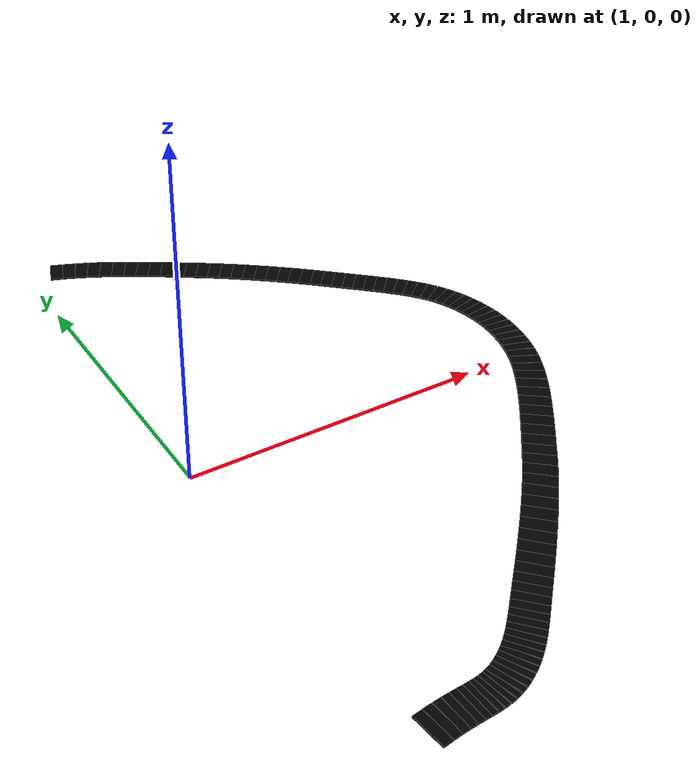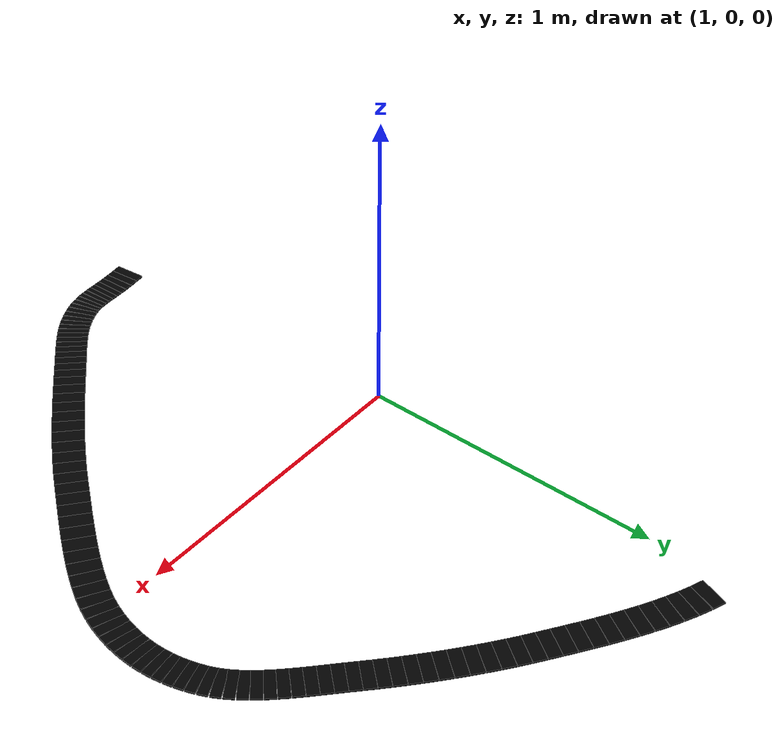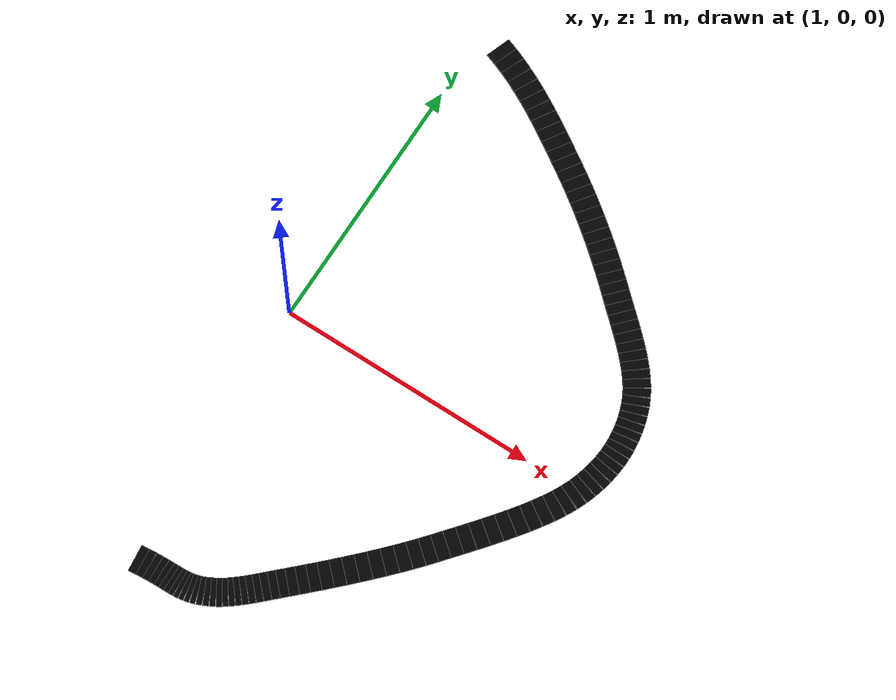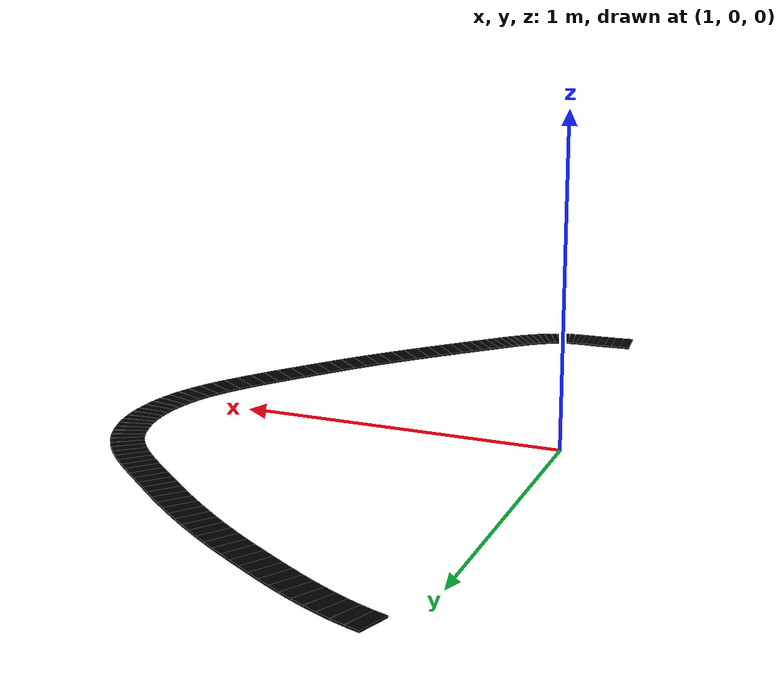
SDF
<sdf version="1.6">
 <world name="camera_line_following_world">
  <include><uri>model://sun</uri></include>
  <model name="black_line_000">
   <static>true</static>
   <pose>2.215967 0.016960 0.018 0 0 1.232498</pose>
   <link name="line_link">
    <visual name="line_visual">
     <geometry><box><size>0.035959 0.100000 0.006</size></box></geometry>
     <material><ambient>0 0 0 1</ambient><diffuse>0 0 0 1</diffuse><specular>0 0 0 1</specular></material>
    </visual>
   </link>
  </model>
  <model name="black_line_001">
   <static>true</static>
   <pose>2.226760 0.050630 0.018 0 0 1.289628</pose>
   <link name="line_link">
    <visual name="line_visual">
     <geometry><box><size>0.034784 0.100000 0.006</size></box></geometry>
     <material><ambient>0 0 0 1</ambient><diffuse>0 0 0 1</diffuse><specular>0 0 0 1</specular></material>
    </visual>
   </link>
  </model>
  <model name="black_line_002">
   <static>true</static>
   <pose>2.235295 0.083803 0.018 0 0 1.349238</pose>
   <link name="line_link">
    <visual name="line_visual">
     <geometry><box><size>0.033753 0.100000 0.006</size></box></geometry>
     <material><ambient>0 0 0 1</ambient><diffuse>0 0 0 1</diffuse><specular>0 0 0 1</specular></material>
    </visual>
   </link>
  </model>
  <model name="black_line_003">
   <static>true</static>
   <pose>2.241618 0.116491 0.018 0 0 1.410995</pose>
   <link name="line_link">
    <visual name="line_visual">
     <geometry><box><size>0.032868 0.100000 0.006</size></box></geometry>
     <material><ambient>0 0 0 1</ambient><diffuse>0 0 0 1</diffuse><specular>0 0 0 1</specular></material>
    </visual>
   </link>
  </model>
  <model name="black_line_004">
   <static>true</static>
   <pose>2.245778 0.148706 0.018 0 0 1.474469</pose>
   <link name="line_link">
    <visual name="line_visual">
     <geometry><box><size>0.032131 0.100000 0.006</size></box></geometry>
     <material><ambient>0 0 0 1</ambient><diffuse>0 0 0 1</diffuse><specular>0 0 0 1</specular></material>
    </visual>
   </link>
  </model>
  <model name="black_line_005">
   <static>true</static>
   <pose>2.247822 0.180461 0.018 0 0 1.539146</pose>
   <link name="line_link">
    <visual name="line_visual">
     <geometry><box><size>0.031543 0.100000 0.006</size></box></geometry>
     <material><ambient>0 0 0 1</ambient><diffuse>0 0 0 1</diffuse><specular>0 0 0 1</specular></material>
    </visual>
   </link>
  </model>
  <model name="black_line_006">
   <static>true</static>
   <pose>2.247798 0.211766 0.018 0 0 1.604450</pose>
   <link name="line_link">
    <visual name="line_visual">
     <geometry><box><size>0.031101 0.100000 0.006</size></box></geometry>
     <material><ambient>0 0 0 1</ambient><diffuse>0 0 0 1</diffuse><specular>0 0 0 1</specular></material>
    </visual>
   </link>
  </model>
  <model name="black_line_007">
   <static>true</static>
   <pose>2.245753 0.242633 0.018 0 0 1.669765</pose>
   <link name="line_link">
    <visual name="line_visual">
     <geometry><box><size>0.030803 0.100000 0.006</size></box></geometry>
     <material><ambient>0 0 0 1</ambient><diffuse>0 0 0 1</diffuse><specular>0 0 0 1</specular></material>
    </visual>
   </link>
  </model>
  <model name="black_line_008">
   <static>true</static>
   <pose>2.241735 0.273075 0.018 0 0 1.734476</pose>
   <link name="line_link">
    <visual name="line_visual">
     <geometry><box><size>0.030642 0.100000 0.006</size></box></geometry>
     <material><ambient>0 0 0 1</ambient><diffuse>0 0 0 1</diffuse><specular>0 0 0 1</specular></material>
    </visual>
   </link>
  </model>
  <model name="black_line_009">
   <static>true</static>
   <pose>2.235791 0.303104 0.018 0 0 1.797994</pose>
   <link name="line_link">
    <visual name="line_visual">
     <geometry><box><size>0.030611 0.100000 0.006</size></box></geometry>
     <material><ambient>0 0 0 1</ambient><diffuse>0 0 0 1</diffuse><specular>0 0 0 1</specular></material>
    </visual>
   </link>
  </model>
  <model name="black_line_010">
   <static>true</static>
   <pose>2.227969 0.332730 0.018 0 0 1.859790</pose>
   <link name="line_link">
    <visual name="line_visual">
     <geometry><box><size>0.030702 0.100000 0.006</size></box></geometry>
     <material><ambient>0 0 0 1</ambient><diffuse>0 0 0 1</diffuse><specular>0 0 0 1</specular></material>
    </visual>
   </link>
  </model>
  <model name="black_line_011">
   <static>true</static>
   <pose>2.218315 0.361967 0.018 0 0 1.919415</pose>
   <link name="line_link">
    <visual name="line_visual">
     <geometry><box><size>0.030903 0.100000 0.006</size></box></geometry>
     <material><ambient>0 0 0 1</ambient><diffuse>0 0 0 1</diffuse><specular>0 0 0 1</specular></material>
    </visual>
   </link>
  </model>
  <model name="black_line_012">
   <static>true</static>
   <pose>2.206560 0.390723 0.018 0 0 1.997819</pose>
   <link name="line_link">
    <visual name="line_visual">
     <geometry><box><size>0.031277 0.100000 0.006</size></box></geometry>
     <material><ambient>0 0 0 1</ambient><diffuse>0 0 0 1</diffuse><specular>0 0 0 1</specular></material>
    </visual>
   </link>
  </model>
  <model name="black_line_013">
   <static>true</static>
   <pose>2.192194 0.418836 0.018 0 0 2.087684</pose>
   <link name="line_link">
    <visual name="line_visual">
     <geometry><box><size>0.031929 0.100000 0.006</size></box></geometry>
     <material><ambient>0 0 0 1</ambient><diffuse>0 0 0 1</diffuse><specular>0 0 0 1</specular></material>
    </visual>
   </link>
  </model>
  <model name="black_line_014">
   <static>true</static>
   <pose>2.175149 0.446287 0.018 0 0 2.164276</pose>
   <link name="line_link">
    <visual name="line_visual">
     <geometry><box><size>0.032743 0.100000 0.006</size></box></geometry>
     <material><ambient>0 0 0 1</ambient><diffuse>0 0 0 1</diffuse><specular>0 0 0 1</specular></material>
    </visual>
   </link>
  </model>
  <model name="black_line_015">
   <static>true</static>
   <pose>2.155717 0.473172 0.018 0 0 2.228148</pose>
   <link name="line_link">
    <visual name="line_visual">
     <geometry><box><size>0.033636 0.100000 0.006</size></box></geometry>
     <material><ambient>0 0 0 1</ambient><diffuse>0 0 0 1</diffuse><specular>0 0 0 1</specular></material>
    </visual>
   </link>
  </model>
  <model name="black_line_016">
   <static>true</static>
   <pose>2.134190 0.499589 0.018 0 0 2.280273</pose>
   <link name="line_link">
    <visual name="line_visual">
     <geometry><box><size>0.034542 0.100000 0.006</size></box></geometry>
     <material><ambient>0 0 0 1</ambient><diffuse>0 0 0 1</diffuse><specular>0 0 0 1</specular></material>
    </visual>
   </link>
  </model>
  <model name="black_line_017">
   <static>true</static>
   <pose>2.110859 0.525635 0.018 0 0 2.321743</pose>
   <link name="line_link">
    <visual name="line_visual">
     <geometry><box><size>0.035408 0.100000 0.006</size></box></geometry>
     <material><ambient>0 0 0 1</ambient><diffuse>0 0 0 1</diffuse><specular>0 0 0 1</specular></material>
    </visual>
   </link>
  </model>
  <model name="black_line_018">
   <static>true</static>
   <pose>2.086016 0.551407 0.018 0 0 2.353594</pose>
   <link name="line_link">
    <visual name="line_visual">
     <geometry><box><size>0.036194 0.100000 0.006</size></box></geometry>
     <material><ambient>0 0 0 1</ambient><diffuse>0 0 0 1</diffuse><specular>0 0 0 1</specular></material>
    </visual>
   </link>
  </model>
  <model name="black_line_019">
   <static>true</static>
   <pose>2.059952 0.577002 0.018 0 0 2.376712</pose>
   <link name="line_link">
    <visual name="line_visual">
     <geometry><box><size>0.036870 0.100000 0.006</size></box></geometry>
     <material><ambient>0 0 0 1</ambient><diffuse>0 0 0 1</diffuse><specular>0 0 0 1</specular></material>
    </visual>
   </link>
  </model>
  <model name="black_line_020">
   <static>true</static>
   <pose>2.032961 0.602517 0.018 0 0 2.391803</pose>
   <link name="line_link">
    <visual name="line_visual">
     <geometry><box><size>0.037418 0.100000 0.006</size></box></geometry>
     <material><ambient>0 0 0 1</ambient><diffuse>0 0 0 1</diffuse><specular>0 0 0 1</specular></material>
    </visual>
   </link>
  </model>
  <model name="black_line_021">
   <static>true</static>
   <pose>2.005332 0.628050 0.018 0 0 2.399380</pose>
   <link name="line_link">
    <visual name="line_visual">
     <geometry><box><size>0.037823 0.100000 0.006</size></box></geometry>
     <material><ambient>0 0 0 1</ambient><diffuse>0 0 0 1</diffuse><specular>0 0 0 1</specular></material>
    </visual>
   </link>
  </model>
  <model name="black_line_022">
   <static>true</static>
   <pose>1.977358 0.653696 0.018 0 0 2.399768</pose>
   <link name="line_link">
    <visual name="line_visual">
     <geometry><box><size>0.038080 0.100000 0.006</size></box></geometry>
     <material><ambient>0 0 0 1</ambient><diffuse>0 0 0 1</diffuse><specular>0 0 0 1</specular></material>
    </visual>
   </link>
  </model>
  <model name="black_line_023">
   <static>true</static>
   <pose>1.949330 0.679554 0.018 0 0 2.393117</pose>
   <link name="line_link">
    <visual name="line_visual">
     <geometry><box><size>0.038188 0.100000 0.006</size></box></geometry>
     <material><ambient>0 0 0 1</ambient><diffuse>0 0 0 1</diffuse><specular>0 0 0 1</specular></material>
    </visual>
   </link>
  </model>
  <model name="black_line_024">
   <static>true</static>
   <pose>1.921168 0.705697 0.018 0 0 2.393620</pose>
   <link name="line_link">
    <visual name="line_visual">
     <geometry><box><size>0.038664 0.100000 0.006</size></box></geometry>
     <material><ambient>0 0 0 1</ambient><diffuse>0 0 0 1</diffuse><specular>0 0 0 1</specular></material>
    </visual>
   </link>
  </model>
  <model name="black_line_025">
   <static>true</static>
   <pose>1.892340 0.732111 0.018 0 0 2.405928</pose>
   <link name="line_link">
    <visual name="line_visual">
     <geometry><box><size>0.039537 0.100000 0.006</size></box></geometry>
     <material><ambient>0 0 0 1</ambient><diffuse>0 0 0 1</diffuse><specular>0 0 0 1</specular></material>
    </visual>
   </link>
  </model>
  <model name="black_line_026">
   <static>true</static>
   <pose>1.862575 0.758717 0.018 0 0 2.418335</pose>
   <link name="line_link">
    <visual name="line_visual">
     <geometry><box><size>0.040310 0.100000 0.006</size></box></geometry>
     <material><ambient>0 0 0 1</ambient><diffuse>0 0 0 1</diffuse><specular>0 0 0 1</specular></material>
    </visual>
   </link>
  </model>
  <model name="black_line_027">
   <static>true</static>
   <pose>1.831934 0.785424 0.018 0 0 2.430927</pose>
   <link name="line_link">
    <visual name="line_visual">
     <geometry><box><size>0.040985 0.100000 0.006</size></box></geometry>
     <material><ambient>0 0 0 1</ambient><diffuse>0 0 0 1</diffuse><specular>0 0 0 1</specular></material>
    </visual>
   </link>
  </model>
  <model name="black_line_028">
   <static>true</static>
   <pose>1.800479 0.812144 0.018 0 0 2.443785</pose>
   <link name="line_link">
    <visual name="line_visual">
     <geometry><box><size>0.041561 0.100000 0.006</size></box></geometry>
     <material><ambient>0 0 0 1</ambient><diffuse>0 0 0 1</diffuse><specular>0 0 0 1</specular></material>
    </visual>
   </link>
  </model>
  <model name="black_line_029">
   <static>true</static>
   <pose>1.768273 0.838788 0.018 0 0 2.456992</pose>
   <link name="line_link">
    <visual name="line_visual">
     <geometry><box><size>0.042040 0.100000 0.006</size></box></geometry>
     <material><ambient>0 0 0 1</ambient><diffuse>0 0 0 1</diffuse><specular>0 0 0 1</specular></material>
    </visual>
   </link>
  </model>
  <model name="black_line_030">
   <static>true</static>
   <pose>1.735377 0.865268 0.018 0 0 2.470627</pose>
   <link name="line_link">
    <visual name="line_visual">
     <geometry><box><size>0.042422 0.100000 0.006</size></box></geometry>
     <material><ambient>0 0 0 1</ambient><diffuse>0 0 0 1</diffuse><specular>0 0 0 1</specular></material>
    </visual>
   </link>
  </model>
  <model name="black_line_031">
   <static>true</static>
   <pose>1.701853 0.891495 0.018 0 0 2.484775</pose>
   <link name="line_link">
    <visual name="line_visual">
     <geometry><box><size>0.042708 0.100000 0.006</size></box></geometry>
     <material><ambient>0 0 0 1</ambient><diffuse>0 0 0 1</diffuse><specular>0 0 0 1</specular></material>
    </visual>
   </link>
  </model>
  <model name="black_line_032">
   <static>true</static>
   <pose>1.667763 0.917379 0.018 0 0 2.499521</pose>
   <link name="line_link">
    <visual name="line_visual">
     <geometry><box><size>0.042900 0.100000 0.006</size></box></geometry>
     <material><ambient>0 0 0 1</ambient><diffuse>0 0 0 1</diffuse><specular>0 0 0 1</specular></material>
    </visual>
   </link>
  </model>
  <model name="black_line_033">
   <static>true</static>
   <pose>1.633170 0.942833 0.018 0 0 2.514958</pose>
   <link name="line_link">
    <visual name="line_visual">
     <geometry><box><size>0.043000 0.100000 0.006</size></box></geometry>
     <material><ambient>0 0 0 1</ambient><diffuse>0 0 0 1</diffuse><specular>0 0 0 1</specular></material>
    </visual>
   </link>
  </model>
  <model name="black_line_034">
   <static>true</static>
   <pose>1.598134 0.967767 0.018 0 0 2.531183</pose>
   <link name="line_link">
    <visual name="line_visual">
     <geometry><box><size>0.043007 0.100000 0.006</size></box></geometry>
     <material><ambient>0 0 0 1</ambient><diffuse>0 0 0 1</diffuse><specular>0 0 0 1</specular></material>
    </visual>
   </link>
  </model>
  <model name="black_line_035">
   <static>true</static>
   <pose>1.562719 0.992092 0.018 0 0 2.548303</pose>
   <link name="line_link">
    <visual name="line_visual">
     <geometry><box><size>0.042925 0.100000 0.006</size></box></geometry>
     <material><ambient>0 0 0 1</ambient><diffuse>0 0 0 1</diffuse><specular>0 0 0 1</specular></material>
    </visual>
   </link>
  </model>
  <model name="black_line_036">
   <static>true</static>
   <pose>1.526925 1.016011 0.018 0 0 2.556672</pose>
   <link name="line_link">
    <visual name="line_visual">
     <geometry><box><size>0.043175 0.100000 0.006</size></box></geometry>
     <material><ambient>0 0 0 1</ambient><diffuse>0 0 0 1</diffuse><specular>0 0 0 1</specular></material>
    </visual>
   </link>
  </model>
  <model name="black_line_037">
   <static>true</static>
   <pose>1.490671 1.039974 0.018 0 0 2.558398</pose>
   <link name="line_link">
    <visual name="line_visual">
     <geometry><box><size>0.043741 0.100000 0.006</size></box></geometry>
     <material><ambient>0 0 0 1</ambient><diffuse>0 0 0 1</diffuse><specular>0 0 0 1</specular></material>
    </visual>
   </link>
  </model>
  <model name="black_line_038">
   <static>true</static>
   <pose>1.453900 1.064080 0.018 0 0 2.564176</pose>
   <link name="line_link">
    <visual name="line_visual">
     <geometry><box><size>0.044196 0.100000 0.006</size></box></geometry>
     <material><ambient>0 0 0 1</ambient><diffuse>0 0 0 1</diffuse><specular>0 0 0 1</specular></material>
    </visual>
   </link>
  </model>
  <model name="black_line_039">
   <static>true</static>
   <pose>1.416605 1.088118 0.018 0 0 2.573924</pose>
   <link name="line_link">
    <visual name="line_visual">
     <geometry><box><size>0.044545 0.100000 0.006</size></box></geometry>
     <material><ambient>0 0 0 1</ambient><diffuse>0 0 0 1</diffuse><specular>0 0 0 1</specular></material>
    </visual>
   </link>
  </model>
  <model name="black_line_040">
   <static>true</static>
   <pose>1.378779 1.111876 0.018 0 0 2.587619</pose>
   <link name="line_link">
    <visual name="line_visual">
     <geometry><box><size>0.044793 0.100000 0.006</size></box></geometry>
     <material><ambient>0 0 0 1</ambient><diffuse>0 0 0 1</diffuse><specular>0 0 0 1</specular></material>
    </visual>
   </link>
  </model>
  <model name="black_line_041">
   <static>true</static>
   <pose>1.340415 1.135141 0.018 0 0 2.605286</pose>
   <link name="line_link">
    <visual name="line_visual">
     <geometry><box><size>0.044946 0.100000 0.006</size></box></geometry>
     <material><ambient>0 0 0 1</ambient><diffuse>0 0 0 1</diffuse><specular>0 0 0 1</specular></material>
    </visual>
   </link>
  </model>
  <model name="black_line_042">
   <static>true</static>
   <pose>1.301505 1.157701 0.018 0 0 2.626995</pose>
   <link name="line_link">
    <visual name="line_visual">
     <geometry><box><size>0.045014 0.100000 0.006</size></box></geometry>
     <material><ambient>0 0 0 1</ambient><diffuse>0 0 0 1</diffuse><specular>0 0 0 1</specular></material>
    </visual>
   </link>
  </model>
  <model name="black_line_043">
   <static>true</static>
   <pose>1.262042 1.179345 0.018 0 0 2.652852</pose>
   <link name="line_link">
    <visual name="line_visual">
     <geometry><box><size>0.045011 0.100000 0.006</size></box></geometry>
     <material><ambient>0 0 0 1</ambient><diffuse>0 0 0 1</diffuse><specular>0 0 0 1</specular></material>
    </visual>
   </link>
  </model>
  <model name="black_line_044">
   <static>true</static>
   <pose>1.222019 1.199862 0.018 0 0 2.682985</pose>
   <link name="line_link">
    <visual name="line_visual">
     <geometry><box><size>0.044949 0.100000 0.006</size></box></geometry>
     <material><ambient>0 0 0 1</ambient><diffuse>0 0 0 1</diffuse><specular>0 0 0 1</specular></material>
    </visual>
   </link>
  </model>
  <model name="black_line_045">
   <static>true</static>
   <pose>1.181429 1.219037 0.018 0 0 2.717539</pose>
   <link name="line_link">
    <visual name="line_visual">
     <geometry><box><size>0.044847 0.100000 0.006</size></box></geometry>
     <material><ambient>0 0 0 1</ambient><diffuse>0 0 0 1</diffuse><specular>0 0 0 1</specular></material>
    </visual>
   </link>
  </model>
  <model name="black_line_046">
   <static>true</static>
   <pose>1.140265 1.236661 0.018 0 0 2.756653</pose>
   <link name="line_link">
    <visual name="line_visual">
     <geometry><box><size>0.044726 0.100000 0.006</size></box></geometry>
     <material><ambient>0 0 0 1</ambient><diffuse>0 0 0 1</diffuse><specular>0 0 0 1</specular></material>
    </visual>
   </link>
  </model>
  <model name="black_line_047">
   <static>true</static>
   <pose>1.098519 1.252521 0.018 0 0 2.800443</pose>
   <link name="line_link">
    <visual name="line_visual">
     <geometry><box><size>0.044609 0.100000 0.006</size></box></geometry>
     <material><ambient>0 0 0 1</ambient><diffuse>0 0 0 1</diffuse><specular>0 0 0 1</specular></material>
    </visual>
   </link>
  </model>
  <model name="black_line_239">
   <static>true</static>
   <pose>1.062360 -1.036642 0.018 0 0 0.109092</pose>
   <link name="line_link">
    <visual name="line_visual">
     <geometry><box><size>0.030460 0.100000 0.006</size></box></geometry>
     <material><ambient>0 0 0 1</ambient><diffuse>0 0 0 1</diffuse><specular>0 0 0 1</specular></material>
    </visual>
   </link>
  </model>
  <model name="black_line_240">
   <static>true</static>
   <pose>1.091390 -1.033563 0.018 0 0 0.101914</pose>
   <link name="line_link">
    <visual name="line_visual">
     <geometry><box><size>0.027926 0.100000 0.006</size></box></geometry>
     <material><ambient>0 0 0 1</ambient><diffuse>0 0 0 1</diffuse><specular>0 0 0 1</specular></material>
    </visual>
   </link>
  </model>
  <model name="black_line_241">
   <static>true</static>
   <pose>1.117832 -1.031244 0.018 0 0 0.071457</pose>
   <link name="line_link">
    <visual name="line_visual">
     <geometry><box><size>0.025167 0.100000 0.006</size></box></geometry>
     <material><ambient>0 0 0 1</ambient><diffuse>0 0 0 1</diffuse><specular>0 0 0 1</specular></material>
    </visual>
   </link>
  </model>
  <model name="black_line_242">
   <static>true</static>
   <pose>1.141779 -1.029820 0.018 0 0 0.046092</pose>
   <link name="line_link">
    <visual name="line_visual">
     <geometry><box><size>0.022816 0.100000 0.006</size></box></geometry>
     <material><ambient>0 0 0 1</ambient><diffuse>0 0 0 1</diffuse><specular>0 0 0 1</specular></material>
    </visual>
   </link>
  </model>
  <model name="black_line_243">
   <static>true</static>
   <pose>1.163599 -1.028992 0.018 0 0 0.028985</pose>
   <link name="line_link">
    <visual name="line_visual">
     <geometry><box><size>0.020857 0.100000 0.006</size></box></geometry>
     <material><ambient>0 0 0 1</ambient><diffuse>0 0 0 1</diffuse><specular>0 0 0 1</specular></material>
    </visual>
   </link>
  </model>
  <model name="black_line_244">
   <static>true</static>
   <pose>1.183659 -1.028462 0.018 0 0 0.023676</pose>
   <link name="line_link">
    <visual name="line_visual">
     <geometry><box><size>0.019278 0.100000 0.006</size></box></geometry>
     <material><ambient>0 0 0 1</ambient><diffuse>0 0 0 1</diffuse><specular>0 0 0 1</specular></material>
    </visual>
   </link>
  </model>
  <model name="black_line_245">
   <static>true</static>
   <pose>1.202327 -1.027930 0.018 0 0 0.033593</pose>
   <link name="line_link">
    <visual name="line_visual">
     <geometry><box><size>0.018074 0.100000 0.006</size></box></geometry>
     <material><ambient>0 0 0 1</ambient><diffuse>0 0 0 1</diffuse><specular>0 0 0 1</specular></material>
    </visual>
   </link>
  </model>
  <model name="black_line_246">
   <static>true</static>
   <pose>1.219970 -1.027098 0.018 0 0 0.061265</pose>
   <link name="line_link">
    <visual name="line_visual">
     <geometry><box><size>0.017254 0.100000 0.006</size></box></geometry>
     <material><ambient>0 0 0 1</ambient><diffuse>0 0 0 1</diffuse><specular>0 0 0 1</specular></material>
    </visual>
   </link>
  </model>
  <model name="black_line_247">
   <static>true</static>
   <pose>1.236954 -1.025668 0.018 0 0 0.107334</pose>
   <link name="line_link">
    <visual name="line_visual">
     <geometry><box><size>0.016845 0.100000 0.006</size></box></geometry>
     <material><ambient>0 0 0 1</ambient><diffuse>0 0 0 1</diffuse><specular>0 0 0 1</specular></material>
    </visual>
   </link>
  </model>
  <model name="black_line_248">
   <static>true</static>
   <pose>1.253649 -1.023340 0.018 0 0 0.169701</pose>
   <link name="line_link">
    <visual name="line_visual">
     <geometry><box><size>0.016883 0.100000 0.006</size></box></geometry>
     <material><ambient>0 0 0 1</ambient><diffuse>0 0 0 1</diffuse><specular>0 0 0 1</specular></material>
    </visual>
   </link>
  </model>
  <model name="black_line_249">
   <static>true</static>
   <pose>1.270420 -1.019816 0.018 0 0 0.243398</pose>
   <link name="line_link">
    <visual name="line_visual">
     <geometry><box><size>0.017415 0.100000 0.006</size></box></geometry>
     <material><ambient>0 0 0 1</ambient><diffuse>0 0 0 1</diffuse><specular>0 0 0 1</specular></material>
    </visual>
   </link>
  </model>
  <model name="black_line_250">
   <static>true</static>
   <pose>1.287635 -1.014797 0.018 0 0 0.321660</pose>
   <link name="line_link">
    <visual name="line_visual">
     <geometry><box><size>0.018477 0.100000 0.006</size></box></geometry>
     <material><ambient>0 0 0 1</ambient><diffuse>0 0 0 1</diffuse><specular>0 0 0 1</specular></material>
    </visual>
   </link>
  </model>
  <model name="black_line_251">
   <static>true</static>
   <pose>1.305662 -1.007984 0.018 0 0 0.397817</pose>
   <link name="line_link">
    <visual name="line_visual">
     <geometry><box><size>0.020094 0.100000 0.006</size></box></geometry>
     <material><ambient>0 0 0 1</ambient><diffuse>0 0 0 1</diffuse><specular>0 0 0 1</specular></material>
    </visual>
   </link>
  </model>
  <model name="black_line_252">
   <static>true</static>
   <pose>1.324223 -0.999476 0.018 0 0 0.460759</pose>
   <link name="line_link">
    <visual name="line_visual">
     <geometry><box><size>0.020762 0.100000 0.006</size></box></geometry>
     <material><ambient>0 0 0 1</ambient><diffuse>0 0 0 1</diffuse><specular>0 0 0 1</specular></material>
    </visual>
   </link>
  </model>
  <model name="black_line_253">
   <static>true</static>
   <pose>1.342362 -0.989842 0.018 0 0 0.516290</pose>
   <link name="line_link">
    <visual name="line_visual">
     <geometry><box><size>0.020332 0.100000 0.006</size></box></geometry>
     <material><ambient>0 0 0 1</ambient><diffuse>0 0 0 1</diffuse><specular>0 0 0 1</specular></material>
    </visual>
   </link>
  </model>
  <model name="black_line_254">
   <static>true</static>
   <pose>1.359721 -0.979362 0.018 0 0 0.570143</pose>
   <link name="line_link">
    <visual name="line_visual">
     <geometry><box><size>0.020237 0.100000 0.006</size></box></geometry>
     <material><ambient>0 0 0 1</ambient><diffuse>0 0 0 1</diffuse><specular>0 0 0 1</specular></material>
    </visual>
   </link>
  </model>
  <model name="black_line_255">
   <static>true</static>
   <pose>1.376569 -0.967956 0.018 0 0 0.619837</pose>
   <link name="line_link">
    <visual name="line_visual">
     <geometry><box><size>0.020467 0.100000 0.006</size></box></geometry>
     <material><ambient>0 0 0 1</ambient><diffuse>0 0 0 1</diffuse><specular>0 0 0 1</specular></material>
    </visual>
   </link>
  </model>
  <model name="black_line_256">
   <static>true</static>
   <pose>1.393175 -0.955543 0.018 0 0 0.663365</pose>
   <link name="line_link">
    <visual name="line_visual">
     <geometry><box><size>0.021008 0.100000 0.006</size></box></geometry>
     <material><ambient>0 0 0 1</ambient><diffuse>0 0 0 1</diffuse><specular>0 0 0 1</specular></material>
    </visual>
   </link>
  </model>
  <model name="black_line_257">
   <static>true</static>
   <pose>1.409809 -0.942043 0.018 0 0 0.699448</pose>
   <link name="line_link">
    <visual name="line_visual">
     <geometry><box><size>0.021845 0.100000 0.006</size></box></geometry>
     <material><ambient>0 0 0 1</ambient><diffuse>0 0 0 1</diffuse><specular>0 0 0 1</specular></material>
    </visual>
   </link>
  </model>
  <model name="black_line_258">
   <static>true</static>
   <pose>1.426741 -0.927375 0.018 0 0 0.727583</pose>
   <link name="line_link">
    <visual name="line_visual">
     <geometry><box><size>0.022962 0.100000 0.006</size></box></geometry>
     <material><ambient>0 0 0 1</ambient><diffuse>0 0 0 1</diffuse><specular>0 0 0 1</specular></material>
    </visual>
   </link>
  </model>
  <model name="black_line_259">
   <static>true</static>
   <pose>1.444240 -0.911460 0.018 0 0 0.747929</pose>
   <link name="line_link">
    <visual name="line_visual">
     <geometry><box><size>0.024348 0.100000 0.006</size></box></geometry>
     <material><ambient>0 0 0 1</ambient><diffuse>0 0 0 1</diffuse><specular>0 0 0 1</specular></material>
    </visual>
   </link>
  </model>
  <model name="black_line_260">
   <static>true</static>
   <pose>1.462574 -0.894216 0.018 0 0 0.761120</pose>
   <link name="line_link">
    <visual name="line_visual">
     <geometry><box><size>0.025993 0.100000 0.006</size></box></geometry>
     <material><ambient>0 0 0 1</ambient><diffuse>0 0 0 1</diffuse><specular>0 0 0 1</specular></material>
    </visual>
   </link>
  </model>
  <model name="black_line_261">
   <static>true</static>
   <pose>1.482015 -0.875564 0.018 0 0 0.768058</pose>
   <link name="line_link">
    <visual name="line_visual">
     <geometry><box><size>0.027891 0.100000 0.006</size></box></geometry>
     <material><ambient>0 0 0 1</ambient><diffuse>0 0 0 1</diffuse><specular>0 0 0 1</specular></material>
    </visual>
   </link>
  </model>
  <model name="black_line_262">
   <static>true</static>
   <pose>1.502831 -0.855422 0.018 0 0 0.769756</pose>
   <link name="line_link">
    <visual name="line_visual">
     <geometry><box><size>0.030040 0.100000 0.006</size></box></geometry>
     <material><ambient>0 0 0 1</ambient><diffuse>0 0 0 1</diffuse><specular>0 0 0 1</specular></material>
    </visual>
   </link>
  </model>
  <model name="black_line_263">
   <static>true</static>
   <pose>1.525292 -0.833710 0.018 0 0 0.767214</pose>
   <link name="line_link">
    <visual name="line_visual">
     <geometry><box><size>0.032438 0.100000 0.006</size></box></geometry>
     <material><ambient>0 0 0 1</ambient><diffuse>0 0 0 1</diffuse><specular>0 0 0 1</specular></material>
    </visual>
   </link>
  </model>
  <model name="black_line_264">
   <static>true</static>
   <pose>1.549679 -0.810225 0.018 0 0 0.765963</pose>
   <link name="line_link">
    <visual name="line_visual">
     <geometry><box><size>0.035274 0.100000 0.006</size></box></geometry>
     <material><ambient>0 0 0 1</ambient><diffuse>0 0 0 1</diffuse><specular>0 0 0 1</specular></material>
    </visual>
   </link>
  </model>
  <model name="black_line_265">
   <static>true</static>
   <pose>1.576083 -0.784744 0.018 0 0 0.769133</pose>
   <link name="line_link">
    <visual name="line_visual">
     <geometry><box><size>0.038115 0.100000 0.006</size></box></geometry>
     <material><ambient>0 0 0 1</ambient><diffuse>0 0 0 1</diffuse><specular>0 0 0 1</specular></material>
    </visual>
   </link>
  </model>
  <model name="black_line_266">
   <static>true</static>
   <pose>1.604286 -0.757321 0.018 0 0 0.773502</pose>
   <link name="line_link">
    <visual name="line_visual">
     <geometry><box><size>0.040559 0.100000 0.006</size></box></geometry>
     <material><ambient>0 0 0 1</ambient><diffuse>0 0 0 1</diffuse><specular>0 0 0 1</specular></material>
    </visual>
   </link>
  </model>
  <model name="black_line_267">
   <static>true</static>
   <pose>1.633955 -0.728186 0.018 0 0 0.778985</pose>
   <link name="line_link">
    <visual name="line_visual">
     <geometry><box><size>0.042608 0.100000 0.006</size></box></geometry>
     <material><ambient>0 0 0 1</ambient><diffuse>0 0 0 1</diffuse><specular>0 0 0 1</specular></material>
    </visual>
   </link>
  </model>
  <model name="black_line_268">
   <static>true</static>
   <pose>1.664762 -0.697567 0.018 0 0 0.785575</pose>
   <link name="line_link">
    <visual name="line_visual">
     <geometry><box><size>0.044261 0.100000 0.006</size></box></geometry>
     <material><ambient>0 0 0 1</ambient><diffuse>0 0 0 1</diffuse><specular>0 0 0 1</specular></material>
    </visual>
   </link>
  </model>
  <model name="black_line_269">
   <static>true</static>
   <pose>1.696374 -0.665694 0.018 0 0 0.793323</pose>
   <link name="line_link">
    <visual name="line_visual">
     <geometry><box><size>0.045521 0.100000 0.006</size></box></geometry>
     <material><ambient>0 0 0 1</ambient><diffuse>0 0 0 1</diffuse><specular>0 0 0 1</specular></material>
    </visual>
   </link>
  </model>
  <model name="black_line_270">
   <static>true</static>
   <pose>1.728461 -0.632796 0.018 0 0 0.802331</pose>
   <link name="line_link">
    <visual name="line_visual">
     <geometry><box><size>0.046389 0.100000 0.006</size></box></geometry>
     <material><ambient>0 0 0 1</ambient><diffuse>0 0 0 1</diffuse><specular>0 0 0 1</specular></material>
    </visual>
   </link>
  </model>
  <model name="black_line_271">
   <static>true</static>
   <pose>1.760692 -0.599104 0.018 0 0 0.812756</pose>
   <link name="line_link">
    <visual name="line_visual">
     <geometry><box><size>0.046866 0.100000 0.006</size></box></geometry>
     <material><ambient>0 0 0 1</ambient><diffuse>0 0 0 1</diffuse><specular>0 0 0 1</specular></material>
    </visual>
   </link>
  </model>
  <model name="black_line_272">
   <static>true</static>
   <pose>1.792736 -0.564845 0.018 0 0 0.824816</pose>
   <link name="line_link">
    <visual name="line_visual">
     <geometry><box><size>0.046955 0.100000 0.006</size></box></geometry>
     <material><ambient>0 0 0 1</ambient><diffuse>0 0 0 1</diffuse><specular>0 0 0 1</specular></material>
    </visual>
   </link>
  </model>
  <model name="black_line_273">
   <static>true</static>
   <pose>1.824263 -0.530249 0.018 0 0 0.838802</pose>
   <link name="line_link">
    <visual name="line_visual">
     <geometry><box><size>0.046659 0.100000 0.006</size></box></geometry>
     <material><ambient>0 0 0 1</ambient><diffuse>0 0 0 1</diffuse><specular>0 0 0 1</specular></material>
    </visual>
   </link>
  </model>
  <model name="black_line_274">
   <static>true</static>
   <pose>1.854940 -0.495545 0.018 0 0 0.855104</pose>
   <link name="line_link">
    <visual name="line_visual">
     <geometry><box><size>0.045982 0.100000 0.006</size></box></geometry>
     <material><ambient>0 0 0 1</ambient><diffuse>0 0 0 1</diffuse><specular>0 0 0 1</specular></material>
    </visual>
   </link>
  </model>
  <model name="black_line_275">
   <static>true</static>
   <pose>1.884438 -0.460964 0.018 0 0 0.874242</pose>
   <link name="line_link">
    <visual name="line_visual">
     <geometry><box><size>0.044929 0.100000 0.006</size></box></geometry>
     <material><ambient>0 0 0 1</ambient><diffuse>0 0 0 1</diffuse><specular>0 0 0 1</specular></material>
    </visual>
   </link>
  </model>
  <model name="black_line_276">
   <static>true</static>
   <pose>1.913194 -0.426274 0.018 0 0 0.883032</pose>
   <link name="line_link">
    <visual name="line_visual">
     <geometry><box><size>0.045188 0.100000 0.006</size></box></geometry>
     <material><ambient>0 0 0 1</ambient><diffuse>0 0 0 1</diffuse><specular>0 0 0 1</specular></material>
    </visual>
   </link>
  </model>
  <model name="black_line_277">
   <static>true</static>
   <pose>1.942374 -0.390789 0.018 0 0 0.882183</pose>
   <link name="line_link">
    <visual name="line_visual">
     <geometry><box><size>0.046697 0.100000 0.006</size></box></geometry>
     <material><ambient>0 0 0 1</ambient><diffuse>0 0 0 1</diffuse><specular>0 0 0 1</specular></material>
    </visual>
   </link>
  </model>
  <model name="black_line_278">
   <static>true</static>
   <pose>1.972319 -0.354277 0.018 0 0 0.885549</pose>
   <link name="line_link">
    <visual name="line_visual">
     <geometry><box><size>0.047744 0.100000 0.006</size></box></geometry>
     <material><ambient>0 0 0 1</ambient><diffuse>0 0 0 1</diffuse><specular>0 0 0 1</specular></material>
    </visual>
   </link>
  </model>
  <model name="black_line_279">
   <static>true</static>
   <pose>2.002582 -0.316970 0.018 0 0 0.892953</pose>
   <link name="line_link">
    <visual name="line_visual">
     <geometry><box><size>0.048333 0.100000 0.006</size></box></geometry>
     <material><ambient>0 0 0 1</ambient><diffuse>0 0 0 1</diffuse><specular>0 0 0 1</specular></material>
    </visual>
   </link>
  </model>
  <model name="black_line_280">
   <static>true</static>
   <pose>2.032716 -0.279097 0.018 0 0 0.904458</pose>
   <link name="line_link">
    <visual name="line_visual">
     <geometry><box><size>0.048467 0.100000 0.006</size></box></geometry>
     <material><ambient>0 0 0 1</ambient><diffuse>0 0 0 1</diffuse><specular>0 0 0 1</specular></material>
    </visual>
   </link>
  </model>
  <model name="black_line_281">
   <static>true</static>
   <pose>2.062274 -0.240887 0.018 0 0 0.920352</pose>
   <link name="line_link">
    <visual name="line_visual">
     <geometry><box><size>0.048153 0.100000 0.006</size></box></geometry>
     <material><ambient>0 0 0 1</ambient><diffuse>0 0 0 1</diffuse><specular>0 0 0 1</specular></material>
    </visual>
   </link>
  </model>
  <model name="black_line_282">
   <static>true</static>
   <pose>2.090810 -0.202570 0.018 0 0 0.941173</pose>
   <link name="line_link">
    <visual name="line_visual">
     <geometry><box><size>0.047403 0.100000 0.006</size></box></geometry>
     <material><ambient>0 0 0 1</ambient><diffuse>0 0 0 1</diffuse><specular>0 0 0 1</specular></material>
    </visual>
   </link>
  </model>
  <model name="black_line_283">
   <static>true</static>
   <pose>2.117876 -0.164375 0.018 0 0 0.967749</pose>
   <link name="line_link">
    <visual name="line_visual">
     <geometry><box><size>0.046230 0.100000 0.006</size></box></geometry>
     <material><ambient>0 0 0 1</ambient><diffuse>0 0 0 1</diffuse><specular>0 0 0 1</specular></material>
    </visual>
   </link>
  </model>
  <model name="black_line_284">
   <static>true</static>
   <pose>2.143026 -0.126533 0.018 0 0 1.001286</pose>
   <link name="line_link">
    <visual name="line_visual">
     <geometry><box><size>0.044657 0.100000 0.006</size></box></geometry>
     <material><ambient>0 0 0 1</ambient><diffuse>0 0 0 1</diffuse><specular>0 0 0 1</specular></material>
    </visual>
   </link>
  </model>
  <model name="black_line_285">
   <static>true</static>
   <pose>2.165813 -0.089273 0.018 0 0 1.043502</pose>
   <link name="line_link">
    <visual name="line_visual">
     <geometry><box><size>0.042714 0.100000 0.006</size></box></geometry>
     <material><ambient>0 0 0 1</ambient><diffuse>0 0 0 1</diffuse><specular>0 0 0 1</specular></material>
    </visual>
   </link>
  </model>
  <model name="black_line_286">
   <static>true</static>
   <pose>2.185790 -0.052823 0.018 0 0 1.096816</pose>
   <link name="line_link">
    <visual name="line_visual">
     <geometry><box><size>0.040445 0.100000 0.006</size></box></geometry>
     <material><ambient>0 0 0 1</ambient><diffuse>0 0 0 1</diffuse><specular>0 0 0 1</specular></material>
    </visual>
   </link>
  </model>
  <model name="black_line_287">
   <static>true</static>
   <pose>2.202510 -0.017415 0.018 0 0 1.164624</pose>
   <link name="line_link">
    <visual name="line_visual">
     <geometry><box><size>0.037915 0.100000 0.006</size></box></geometry>
     <material><ambient>0 0 0 1</ambient><diffuse>0 0 0 1</diffuse><specular>0 0 0 1</specular></material>
    </visual>
   </link>
  </model>
 </world>
</sdf>
